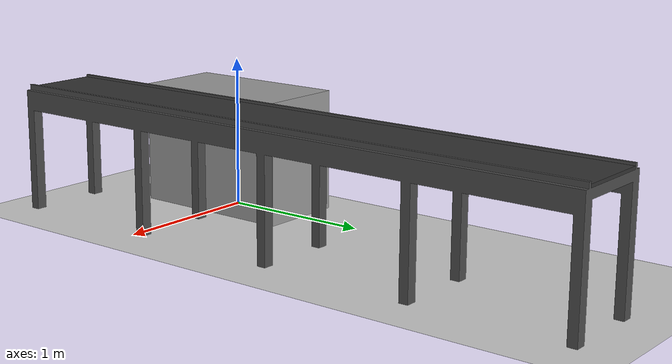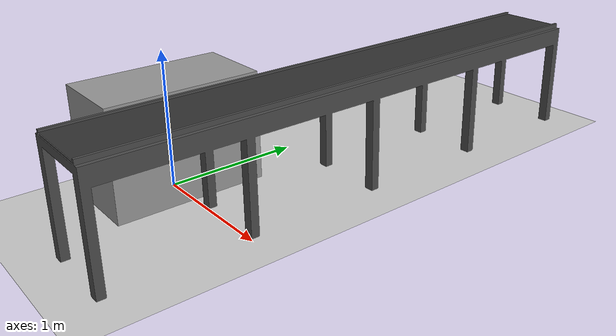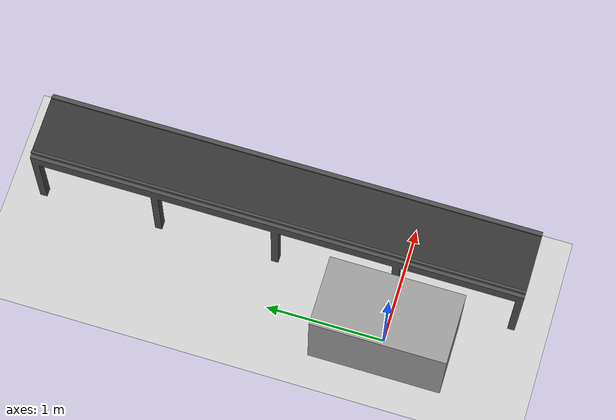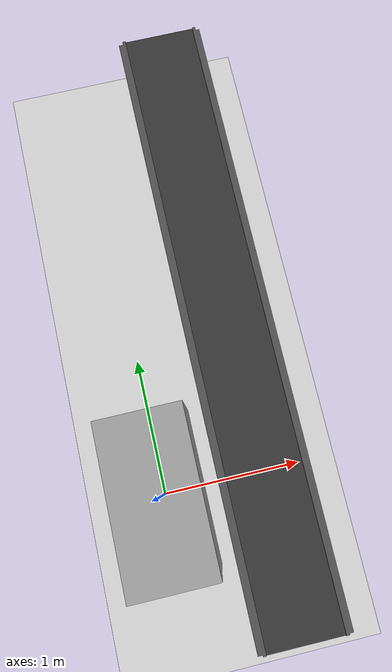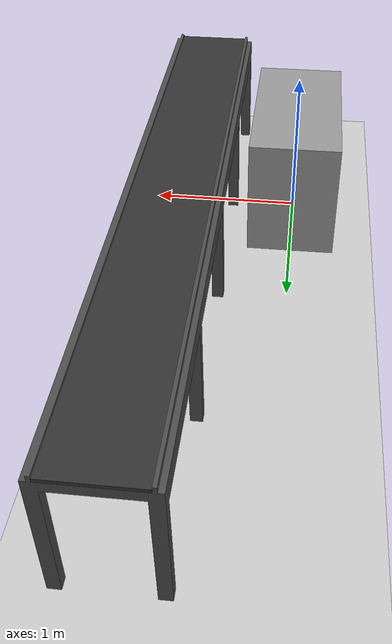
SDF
<sdf version='1.7'>
  <world name='conveyor_world'>
    <physics type='ode'>
      <max_step_size>0.001</max_step_size>
      <real_time_factor>1</real_time_factor>
      <real_time_update_rate>1000</real_time_update_rate>
    </physics>
    <light name='sun' type='directional'>
      <cast_shadows>1</cast_shadows>
      <pose>0 0 10 0 -0 0</pose>
      <diffuse>0.8 0.8 0.8 1</diffuse>
      <specular>0.2 0.2 0.2 1</specular>
      <attenuation>
        <range>1000</range>
        <constant>0.9</constant>
        <linear>0.01</linear>
        <quadratic>0.001</quadratic>
      </attenuation>
      <direction>-0.5 0.1 -0.9</direction>
      <spot>
        <inner_angle>0</inner_angle>
        <outer_angle>0</outer_angle>
        <falloff>0</falloff>
      </spot>
    </light>

    <!--ground model-->
    <model name='ground_plane'>
      <static>1</static>
      <link name='link'>
        <collision name='collision'>
          <geometry>
            <plane>
              <normal>0 0 1</normal>
              <size>1 1</size>
            </plane>
          </geometry>
          <max_contacts>10</max_contacts>
          <surface>
            <contact>
              <ode/>
            </contact>
            <bounce/>
            <friction>
              <torsional>
                <ode/>
              </torsional>
              <ode/>
            </friction>
          </surface>
        </collision>
        <visual name='visual'>
          <geometry>
            <plane>
              <normal>0 0 1</normal>
              <size>100 100</size>
            </plane>
          </geometry>
          <material>
            <ambient>0.8 0.8 0.8 1</ambient>
            <diffuse>0.8 0.8 0.8 1</diffuse>
            <specular>0.8 0.8 0.8 1</specular>
          </material>
        </visual>
        <self_collide>0</self_collide>
        <enable_wind>0</enable_wind>
        <kinematic>0</kinematic>
      </link>
    </model>

    <!--table model-->
    <include>
      <uri>model://table</uri>
      <static>1</static>
      <pose>0 0 0.405 0 0 0</pose>
    </include>

    <!-- Conveyor -->
    <include>
      <uri>model://ConveyorChassis</uri>
      <pose>0.4 -1 0 1.57 0 1.57</pose>
    </include>

    <gravity>0 0 -9.8</gravity>
    <magnetic_field>6e-06 2.3e-05 -4.2e-05</magnetic_field>
    <atmosphere type='adiabatic'/>
    <scene>
      <ambient>0.4 0.4 0.4 1</ambient>
      <background>0.7 0.7 0.7 1</background>
      <shadows>1</shadows>
    </scene>
    <audio>
      <device>default</device>
    </audio>
    <wind/>
    <spherical_coordinates>
      <surface_model>EARTH_WGS84</surface_model>
      <latitude_deg>0</latitude_deg>
      <longitude_deg>0</longitude_deg>
      <elevation>0</elevation>
      <heading_deg>0</heading_deg>
    </spherical_coordinates>
  </world>
</sdf>

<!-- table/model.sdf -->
<sdf version='1.7'>
  <model name='table'>
    <link name='link_1'>
      <inertial>
        <mass>1</mass>
        <inertia>
          <ixx>0.166667</ixx>
          <ixy>0</ixy>
          <ixz>0</ixz>
          <iyy>0.166667</iyy>
          <iyz>0</iyz>
          <izz>0.166667</izz>
        </inertia>
        <pose>0.04 0 0 0 -0 0</pose>
      </inertial>
      <pose>0 0 0 0 -0 0</pose>
      <gravity>1</gravity>
      <self_collide>0</self_collide>
      <kinematic>0</kinematic>
      <enable_wind>0</enable_wind>
      <visual name='visual'>
        <pose>0 0 0 0 -0 0</pose>
        <geometry>
          <box>
            <size>0.585 1.115 0.81</size>
          </box>
        </geometry>
        <material>
          <lighting>1</lighting>
          <script>
            <uri>file://media/materials/scripts/gazebo.material</uri>
            <name>Gazebo/Grey</name>
          </script>
          <shader type='pixel'>
            <normal_map>__default__</normal_map>
          </shader>
          <ambient>0.3 0.3 0.3 1</ambient>
          <diffuse>0.7 0.7 0.7 1</diffuse>
          <specular>0.01 0.01 0.01 1</specular>
          <emissive>0 0 0 1</emissive>
        </material>
        <transparency>0</transparency>
        <cast_shadows>1</cast_shadows>
      </visual>
      <collision name='collision'>
        <laser_retro>0</laser_retro>
        <max_contacts>10</max_contacts>
        <pose>0 0 0 0 -0 0</pose>
        <geometry>
          <box>
            <size>1 1 1</size>
          </box>
        </geometry>
        <surface>
          <friction>
            <ode>
              <mu>1</mu>
              <mu2>1</mu2>
              <fdir1>0 0 0</fdir1>
              <slip1>0</slip1>
              <slip2>0</slip2>
            </ode>
            <torsional>
              <coefficient>1</coefficient>
              <patch_radius>0</patch_radius>
              <surface_radius>0</surface_radius>
              <use_patch_radius>1</use_patch_radius>
              <ode>
                <slip>0</slip>
              </ode>
            </torsional>
          </friction>
          <bounce>
            <restitution_coefficient>0</restitution_coefficient>
            <threshold>1e+06</threshold>
          </bounce>
          <contact>
            <collide_without_contact>0</collide_without_contact>
            <collide_without_contact_bitmask>1</collide_without_contact_bitmask>
            <collide_bitmask>1</collide_bitmask>
            <ode>
              <soft_cfm>0</soft_cfm>
              <soft_erp>0.2</soft_erp>
              <kp>1e+13</kp>
              <kd>1</kd>
              <max_vel>0.01</max_vel>
              <min_depth>0</min_depth>
            </ode>
            <bullet>
              <split_impulse>1</split_impulse>
              <split_impulse_penetration_threshold>-0.01</split_impulse_penetration_threshold>
              <soft_cfm>0</soft_cfm>
              <soft_erp>0.2</soft_erp>
              <kp>1e+13</kp>
              <kd>1</kd>
            </bullet>
          </contact>
        </surface>
      </collision>
    </link>
    <static>0</static>
    <allow_auto_disable>1</allow_auto_disable>
  </model>
</sdf>

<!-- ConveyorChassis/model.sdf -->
<sdf version="1.7">
    <model name="ConveyorChassis">
        <static>true</static>
        <link name="chassis">
            <inertial>
                <mass>120.14395</mass>
                <inertia>
                    <ixx>0.095329</ixx>
                    <ixy>0</ixy>
                    <ixz>0</ixz>
                    <iyy>0.381317</iyy>
                    <iyz>0</iyz>
                    <izz>0.476646</izz>
                </inertia>
            </inertial>
            <visual name="visual">
                <geometry>
                    <mesh>
                        <scale>1e-3 1e-3 1e-3</scale>
                        <uri>model://ConveyorChassis/meshes/ConveyorChassis.stl</uri>
                    </mesh>
                </geometry>
                <material>
                    <ambient>0.3 0.3 0.3 1</ambient>
                    <diffuse>0.3 0.3 0.3 1</diffuse>
                    <specular>0.3 0.3 0.3 1</specular>
                </material>
            </visual>
            <collision name="collision">
                <geometry>
                    <mesh>
                        <scale>1e-3 1e-3 1e-3</scale>
                        <uri>model://ConveyorChassis/meshes/ConveyorChassis.stl</uri>
                    </mesh>
                </geometry>
            </collision>
        </link>

        <!-- 原本履帶表面 -->
        <link name="belt_surface">
        <static>false</static>
            <pose>0 0.83 0.05025 0 0 0</pose>
            <inertial>
                <mass>1.0</mass>
                <inertia>
                    <ixx>0.01</ixx>
                    <iyy>0.01</iyy>
                    <izz>0.01</izz>
                    <ixy>0</ixy>
                    <ixz>0</ixz>
                    <iyz>0</iyz>
                </inertia>
            </inertial>
            <visual name="visual">
                <pose>0 0 0 1.57 0 0</pose>
                <geometry>
                    <mesh>
                        <uri>model://ConveyorBelt/meshes/ConveyorBelt_belt_surface.stl</uri>
                        <scale>0.001 0.001 0.001</scale>
                    </mesh>
                </geometry>
                <material>
                    <ambient>0.2 0.2 0.2 1</ambient>
                    <diffuse>0.2 0.2 0.2 1</diffuse>
                </material>
            </visual>
            <collision name="collision">
                <geometry>
                    <box>
                        <size>4.1 0.4795 0.02</size>
                    </box>
                </geometry>
                <surface>
                    <friction>
                    <ode>
                        <mu>100</mu>
                        <mu2>100</mu2>
                    </ode>
                    <torsional>
                        <coefficient>1000</coefficient>
                        <patch_radius>0.1</patch_radius>
                    </torsional>
                    </friction>
                </surface>
            </collision>
        </link>

        <joint name="belt_joint" type="prismatic">
            <parent>chassis</parent>
            <child>belt_surface</child>
            <axis>
                <xyz>0 1 0</xyz>
                <limit>
                    <lower>-10.0</lower>
                    <upper>10.0</upper>
                </limit>
            </axis>
        </joint>

        <plugin filename="libros2_conveyorbelt_plugin.so" name="ros2_conveyorbelt_plugin">
            <ros>
                <namespace></namespace>
            </ros>
            <max_velocity>1</max_velocity>
            <publish_rate>1000</publish_rate>
        </plugin>

    </model>
</sdf>
